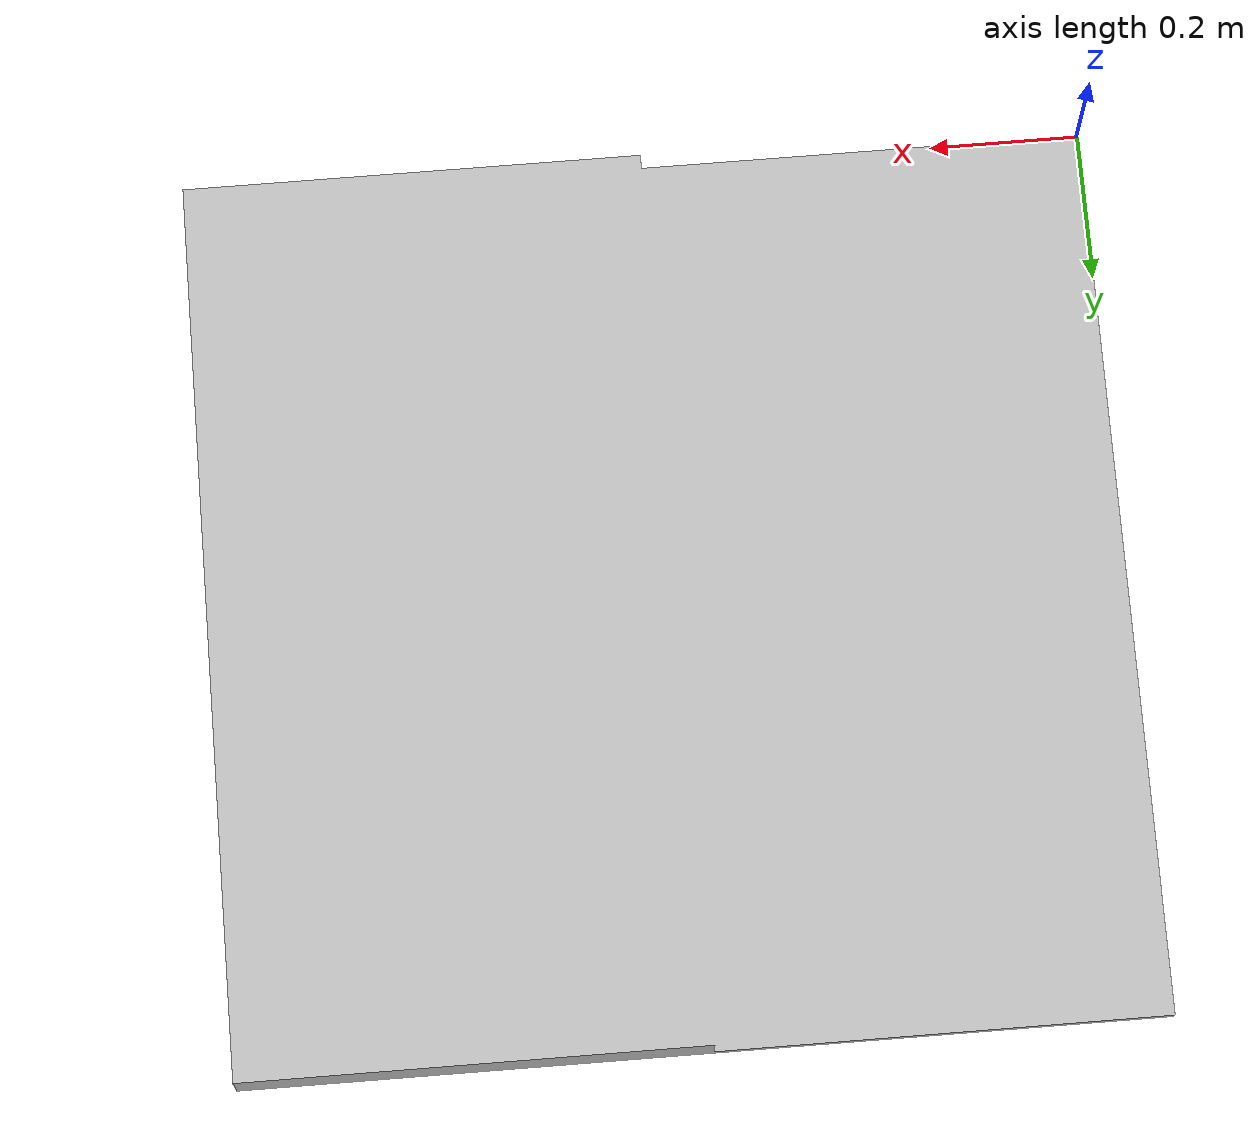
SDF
<?xml version="1.0" ?>
<sdf version="1.5">
  <model name="Step5">
        <static>true</static>
    <link name="link">
    <gravity>0</gravity>
      <collision name="collision">
        <geometry>
          <mesh>
            <scale>1 1 1</scale>
            <uri>model://step_5/meshes/step5.dae</uri>
          </mesh>
        </geometry>
      </collision>
      <visual name="visual">
        <geometry>
          <mesh>
            <scale>1 1 1</scale>
            <uri>model://step_5/meshes/step5.dae</uri>
          </mesh>
        </geometry>
      </visual>
    </link>
  </model>
</sdf>
